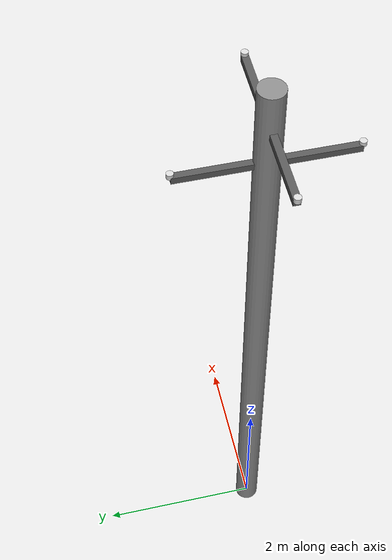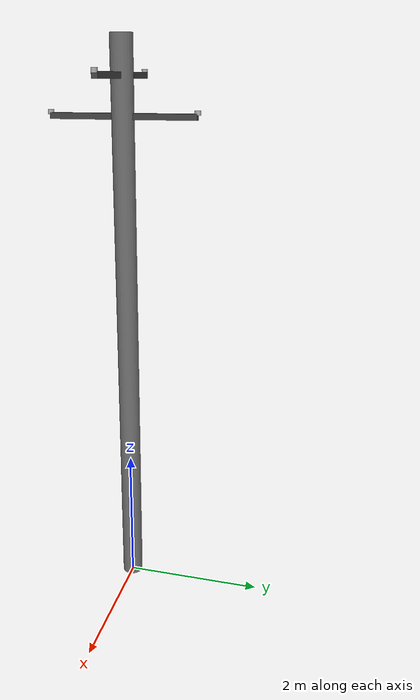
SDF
<?xml version="1.0"?>
<sdf version="1.9">
  <model name="electrical_pole">
    <static>true</static>
    <link name="main">
      <collision name="col">
        <pose>0 0 4 0 0 0</pose>
        <geometry><cylinder><radius>0.15</radius><length>8</length></cylinder></geometry>
      </collision>
      <!-- Pole -->
      <visual name="pole">
        <pose>0 0 4 0 0 0</pose>
        <geometry><cylinder><radius>0.15</radius><length>8</length></cylinder></geometry>
        <material>
          <ambient>0.5 0.5 0.5 1</ambient>
          <diffuse>0.55 0.55 0.55 1</diffuse>
          <specular>0.1 0.1 0.1 1</specular>
        </material>
      </visual>
      <!-- Crossarm 1 (top, along X) -->
      <visual name="crossarm_x">
        <pose>0 0 7.5 0 0 0</pose>
        <geometry><box><size>2 0.08 0.08</size></box></geometry>
        <material>
          <ambient>0.3 0.3 0.3 1</ambient>
          <diffuse>0.35 0.35 0.35 1</diffuse>
        </material>
      </visual>
      <!-- Crossarm 2 (middle, along Y) -->
      <visual name="crossarm_y">
        <pose>0 0 7 0 0 0</pose>
        <geometry><box><size>0.08 2 0.08</size></box></geometry>
        <material>
          <ambient>0.3 0.3 0.3 1</ambient>
          <diffuse>0.35 0.35 0.35 1</diffuse>
        </material>
      </visual>
      <!-- Insulators on crossarm 1 -->
      <visual name="insulator_x1">
        <pose>-1 0 7.55 0 0 0</pose>
        <geometry><cylinder><radius>0.04</radius><length>0.06</length></cylinder></geometry>
        <material><ambient>0.8 0.8 0.8 1</ambient><diffuse>0.85 0.85 0.85 1</diffuse></material>
      </visual>
      <visual name="insulator_x2">
        <pose>1 0 7.55 0 0 0</pose>
        <geometry><cylinder><radius>0.04</radius><length>0.06</length></cylinder></geometry>
        <material><ambient>0.8 0.8 0.8 1</ambient><diffuse>0.85 0.85 0.85 1</diffuse></material>
      </visual>
      <!-- Insulators on crossarm 2 -->
      <visual name="insulator_y1">
        <pose>0 -1 7.05 0 0 0</pose>
        <geometry><cylinder><radius>0.04</radius><length>0.06</length></cylinder></geometry>
        <material><ambient>0.8 0.8 0.8 1</ambient><diffuse>0.85 0.85 0.85 1</diffuse></material>
      </visual>
      <visual name="insulator_y2">
        <pose>0 1 7.05 0 0 0</pose>
        <geometry><cylinder><radius>0.04</radius><length>0.06</length></cylinder></geometry>
        <material><ambient>0.8 0.8 0.8 1</ambient><diffuse>0.85 0.85 0.85 1</diffuse></material>
      </visual>
    </link>
  </model>
</sdf>
